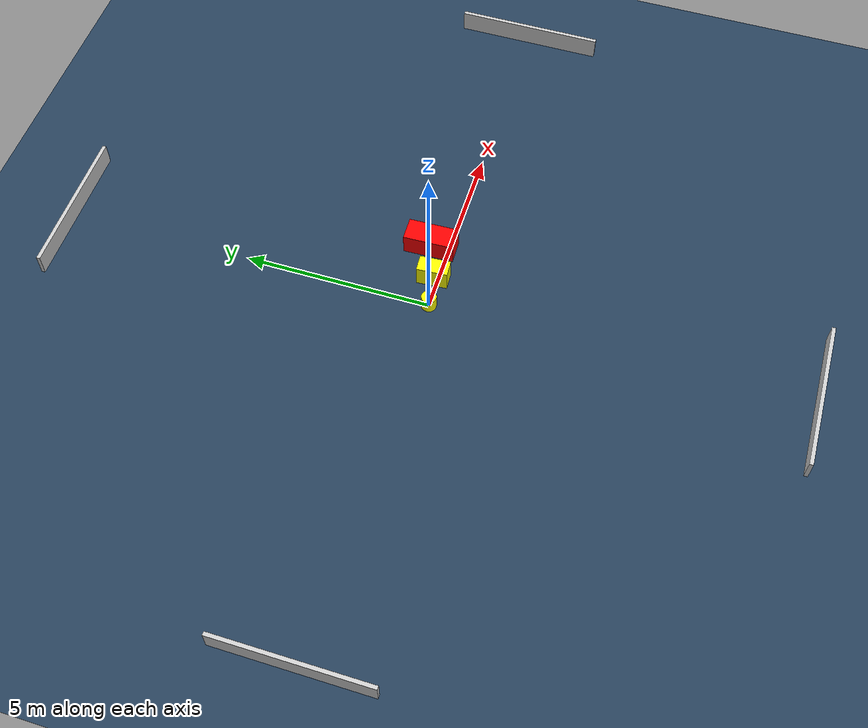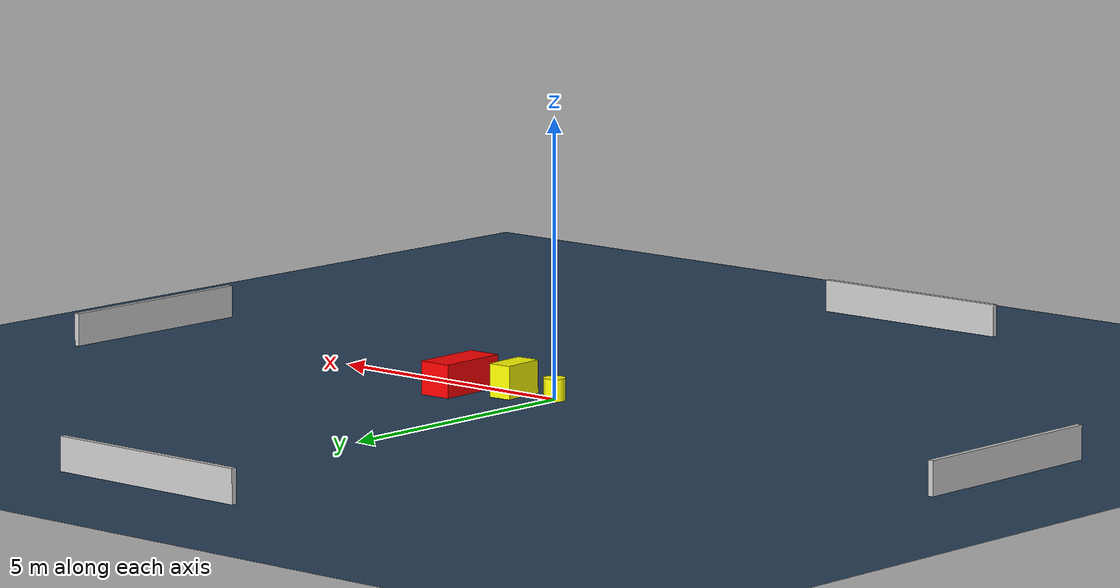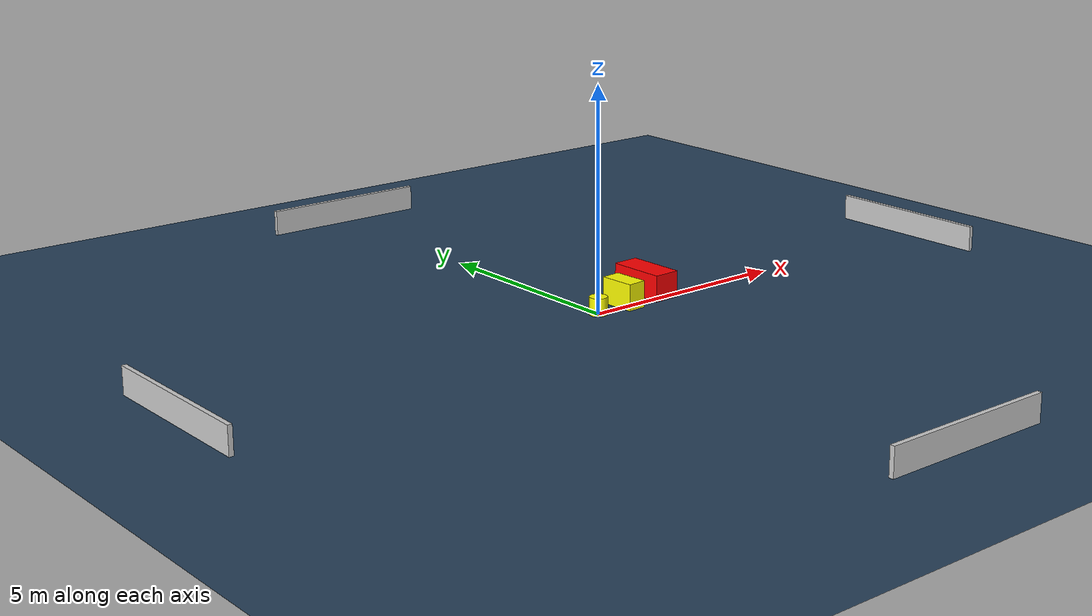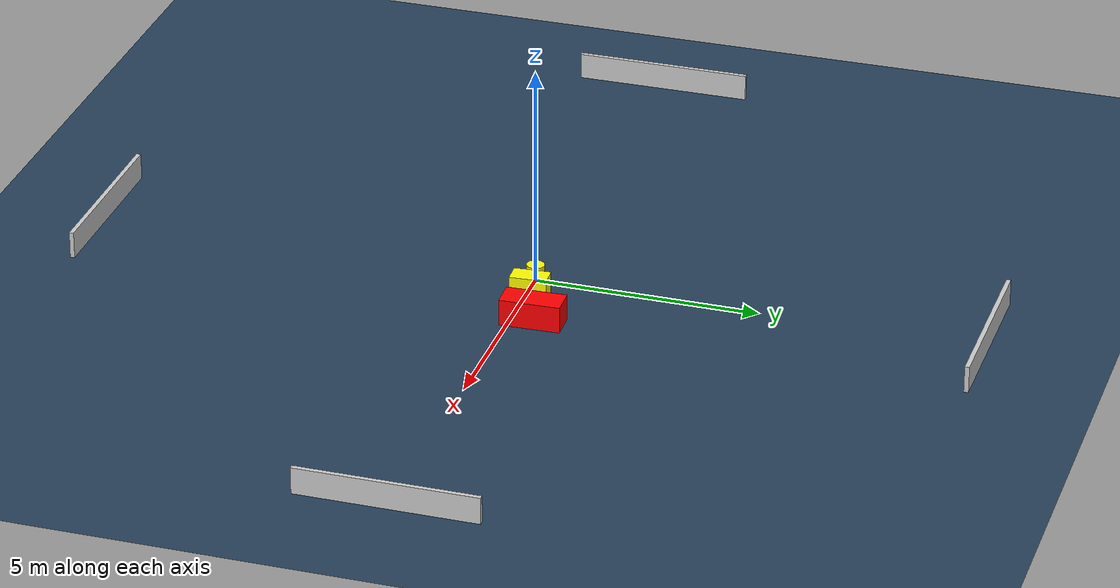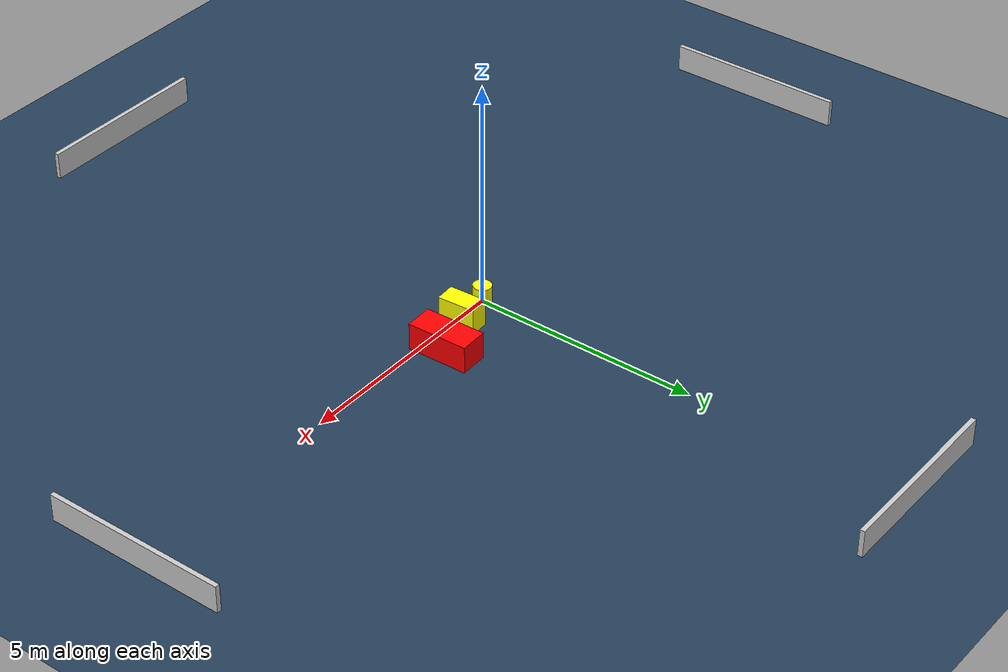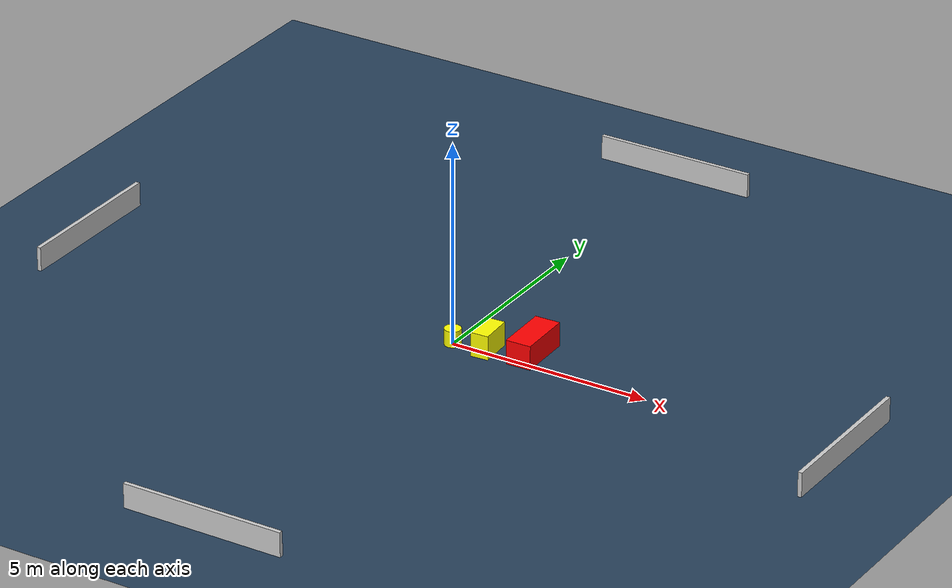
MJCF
<?xml version="1.0" ?>
<mujoco model="generated_environment">
  <option timestep="0.01" integrator="RK4" cone="elliptic"/>
  <default>
    <geom density="1"/>
  </default>
  <asset>
    <texture builtin="gradient" height="3072" name="skybox" rgb1="0.3 0.5 0.7" rgb2="0 0 0" type="skybox" width="512"/>
    <texture builtin="checker" height="300" name="groundplane" rgb1="0.2 0.3 0.4" rgb2="0.1 0.2 0.3" type="2d" width="300"/>
    <material name="groundplane" reflectance="0.2" texrepeat="5 5" texture="groundplane"/>
  </asset>
  <worldbody>
    <light dir="0 0 -1" directional="true" pos="0 0 1.5"/>
    <geom condim="3" friction="0.5 0.005 0.001" material="groundplane" name="floor" pos="0 0 0" size="0 0 0.05" type="plane"/>
    <body name="walls">
      <geom name="wall_1" condim="4" pos="-10.0 0.0 0.3" rgba="0.800000011920929 0.800000011920929 0.800000011920929 1.0" size="0.05 2.0 0.3" type="box"/>
      <geom name="wall_2" condim="4" pos="10.0 0.0 0.3" rgba="0.800000011920929 0.800000011920929 0.800000011920929 1.0" size="0.05 2.0 0.3" type="box"/>
      <geom name="wall_3" condim="4" pos="0.0 -10.0 0.3" rgba="0.800000011920929 0.800000011920929 0.800000011920929 1.0" size="2.0 0.05 0.3" type="box"/>
      <geom name="wall_4" condim="4" pos="0.0 10.0 0.3" rgba="0.800000011920929 0.800000011920929 0.800000011920929 1.0" size="2.0 0.05 0.3" type="box"/>
    </body>
    <body name="robot">
      <joint name="joint_x" type="slide" pos="0 0 0" axis="1 0 0"/>
      <joint name="joint_y" type="slide" pos="0 0 0" axis="0 1 0"/>
      <geom name="robot" type="cylinder" pos="0.0 0.0 0.2" size="0.2 0.2 0.0" mass="5.0" friction="1.0 0.005 0.0001" condim="4" rgba="1.0 1.0 0.0 1.0"/>
    </body>
    <body name="obstacle_1_movable">
      <geom name="obstacle_1_movable" condim="4" pos="0.8394741772535763 0.13536260644325773 0.3" euler="0 0 273.6067234273806" friction="0.0 0.005 0.001" rgba="1.0 1.0 0.0 1.0" size="0.40970610783160444 0.221562077166768 0.3" type="box" mass="0.1"/>
      <joint type="free"/>
    </body>
    <body name="obstacle_2_static">
      <geom name="obstacle_2_static" condim="4" pos="1.8049634402125594 0.5011470203313644 0.3" euler="0 0 271.64169157988516" friction="0.0 0.005 0.001" rgba="1.0 0.0 0.0 1.0" size="0.6737318290287871 0.3103470093495975 0.3" type="box"/>
    </body>
  </worldbody>
  <actuator>
    <motor name="actuator_x" joint="joint_x" gear="1" ctrlrange="-1 1"/>
    <motor name="actuator_y" joint="joint_y" gear="1" ctrlrange="-1 1"/>
  </actuator>
</mujoco>
